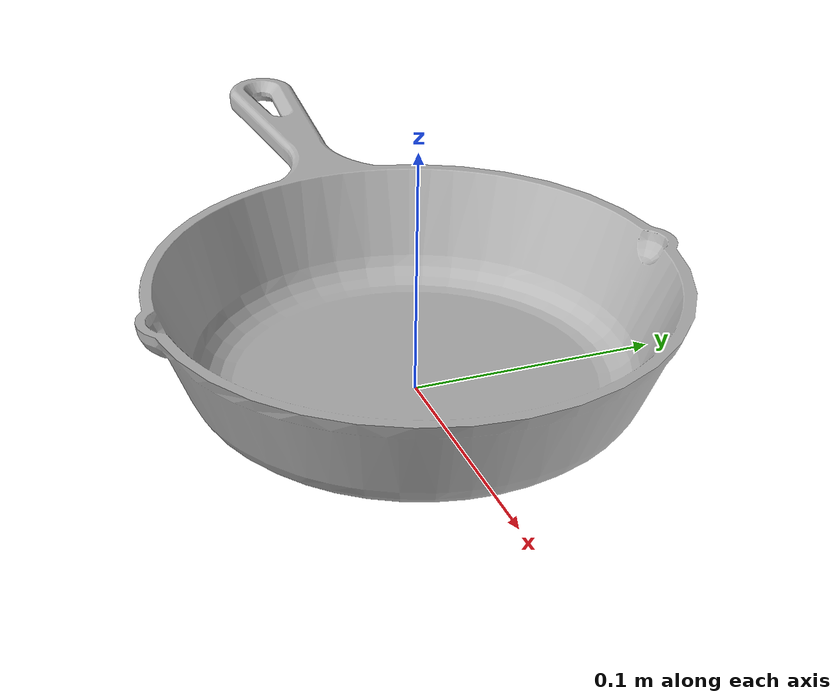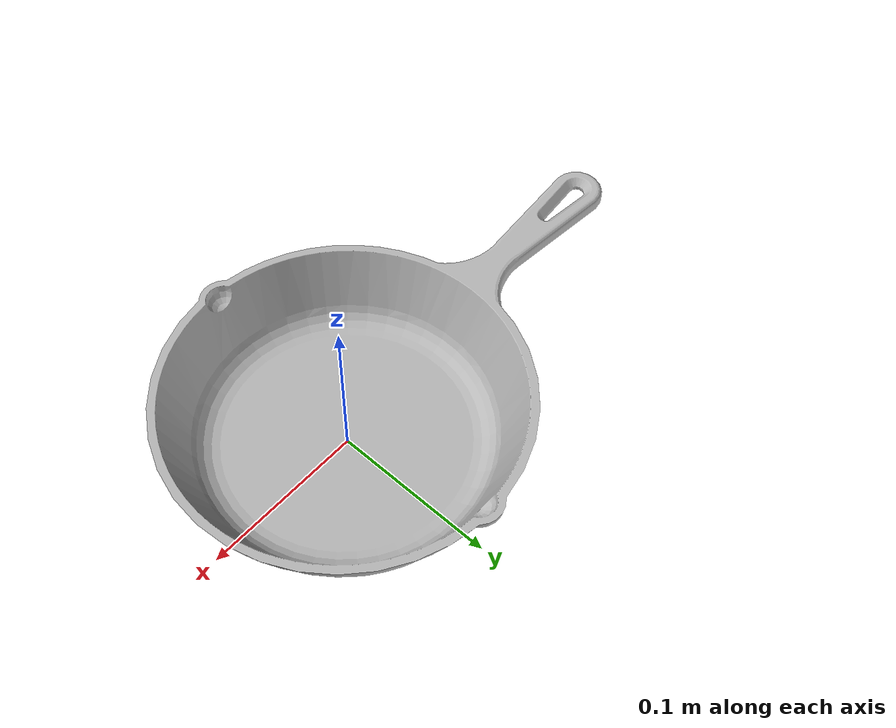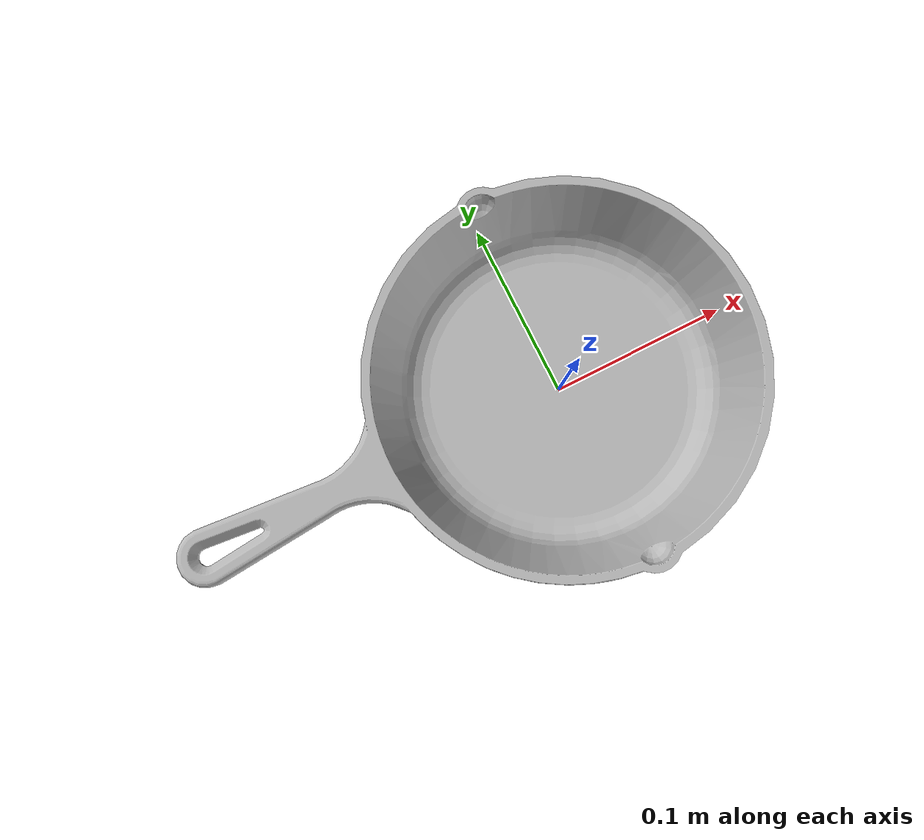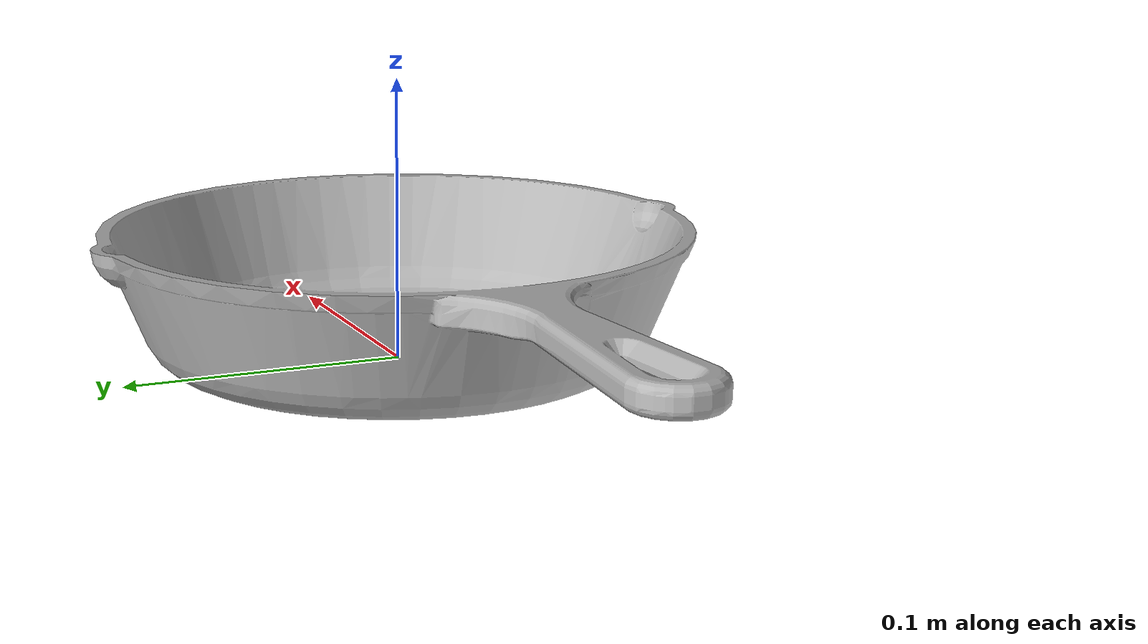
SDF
<sdf version='1.4'>
  <model name='LODGE L5SK3 CAST IRON SKILLET'>
    <link name='kitchen_pan'>
      <pose frame=''>0 0 0 0 -0 0</pose>
      <inertial>
        <pose frame=''>-0.017666 5e-06 0.01925 0 -0 0</pose>
        <mass>1.5988</mass>
        <inertia>
          <ixx>0.0050428</ixx>
          <ixy>3.5946e-07</ixy>
          <ixz>0.00066323</ixz>
          <iyy>0.0089832</iyy>
          <iyz>2.526e-07</iyz>
          <izz>0.013092</izz>
        </inertia>
      </inertial>
      <collision name='kitchen_pan_collision'>
        <pose frame=''>0 0 0 1.5708 -0 0</pose>
        <geometry>
          <mesh>
            <scale>1 1 1</scale>
            <uri>model://kitchen_pan/meshes/kitchen_pan.STL</uri>
          </mesh>
        </geometry>
      </collision>
      <visual name='kitchen_pan_visual'>
        <pose frame=''>0 0 0 1.5708 -0 0</pose>
        <geometry>
          <mesh>
            <scale>1 1 1</scale>
            <uri>model://kitchen_pan/meshes/kitchen_pan.STL</uri>
          </mesh>
        </geometry>
      </visual>
    </link>
  </model>
</sdf>
